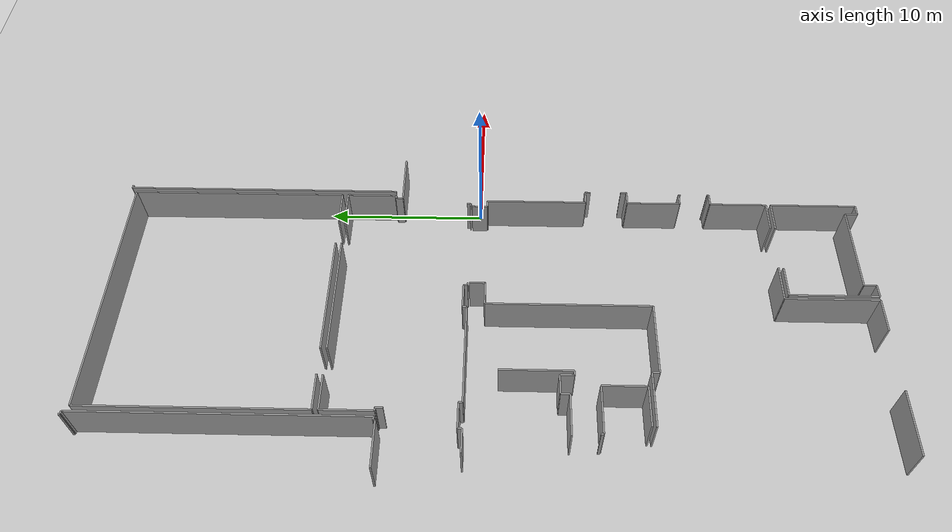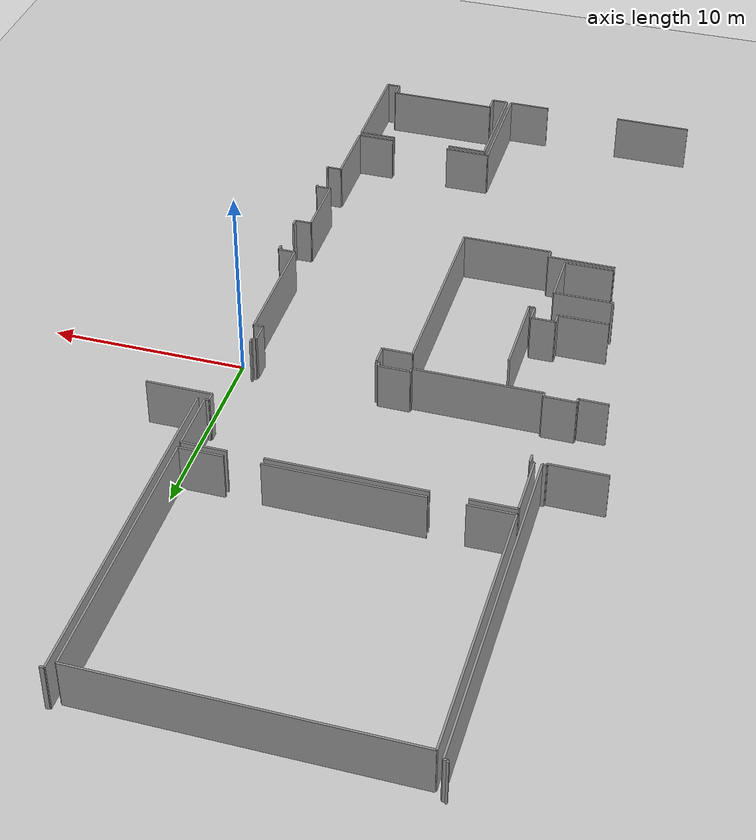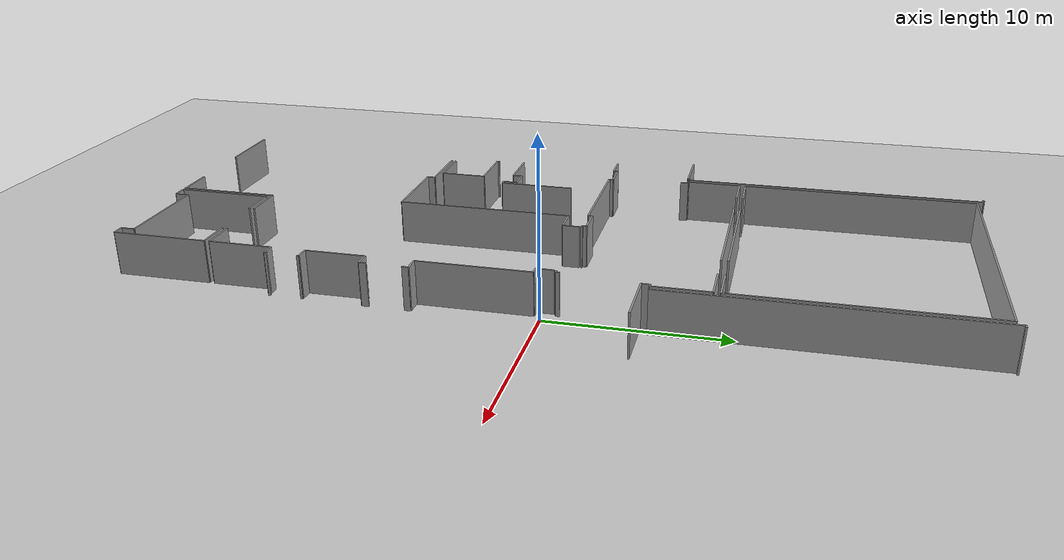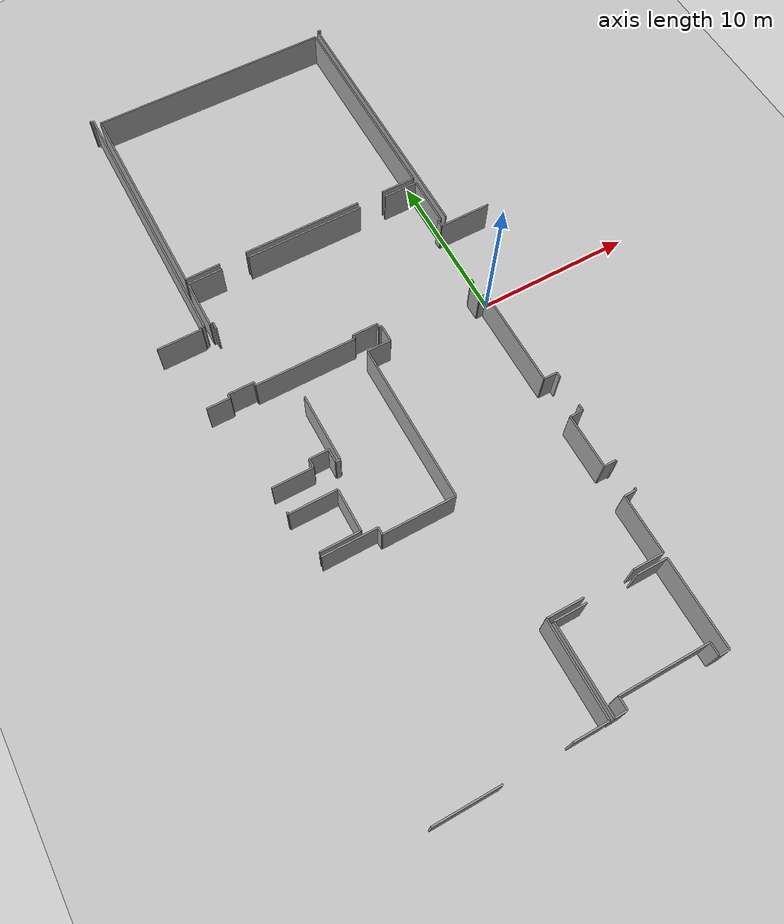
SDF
<sdf version="1.6">
 <world name="default">
  <model name="ground_plane">
   <static>1</static>
   <link name="link">
    <collision name="collision">
     <geometry><plane><normal>0 0 1</normal><size>100 100</size></plane></geometry>
     <surface><friction><ode><mu>100</mu><mu2>50</mu2></ode></friction></surface>
    </collision>
    <visual name="visual">
     <cast_shadows>0</cast_shadows>
     <geometry><plane><normal>0 0 1</normal><size>100 100</size></plane></geometry>
     <material>
      <script><uri>file://media/materials/scripts/gazebo.material</uri><name>Gazebo/Grey</name></script>
     </material>
    </visual>
   </link>
  </model>
  <model name="50057023">
   <static>1</static>
   <link name="Wall_75">
    <collision name="Wall_75_Collision">
     <geometry><box><size>0.115586570159 0.1 2.5</size></box></geometry>
     <pose>0.0577932850793 0 1.25 0 0 0</pose>
    </collision>
    <visual name="Wall_75_Visual">
     <pose>0.0577932850793 0 1.25 0 0 0</pose>
     <geometry><box><size>0.115586570159 0.1 2.5</size></box></geometry>
     <material>
      <script><uri>file://media/materials/scripts/gazebo.material</uri><name>Gazebo/Grey</name></script>
      <ambient>1 1 1 1</ambient>
     </material>
    </visual>
    <pose>39.4108380153 -0.0 0 0 0 -1.57079632679</pose>
   </link>
   <link name="Wall_76">
    <collision name="Wall_76_Collision">
     <geometry><box><size>0.195305816463 0.1 2.5</size></box></geometry>
     <pose>0.0976529082316 0 1.25 0 0 0</pose>
    </collision>
    <visual name="Wall_76_Visual">
     <pose>0.0976529082316 0 1.25 0 0 0</pose>
     <geometry><box><size>0.195305816463 0.1 2.5</size></box></geometry>
     <material>
      <script><uri>file://media/materials/scripts/gazebo.material</uri><name>Gazebo/Grey</name></script>
      <ambient>1 1 1 1</ambient>
     </material>
    </visual>
    <pose>39.4108380153 -0.115586570159 0 0 0 0.0</pose>
   </link>
   <link name="Wall_77">
    <collision name="Wall_77_Collision">
     <geometry><box><size>17.4663727996 0.1 2.5</size></box></geometry>
     <pose>8.73318639982 0 1.25 0 0 0</pose>
    </collision>
    <visual name="Wall_77_Visual">
     <pose>8.73318639982 0 1.25 0 0 0</pose>
     <geometry><box><size>17.4663727996 0.1 2.5</size></box></geometry>
     <material>
      <script><uri>file://media/materials/scripts/gazebo.material</uri><name>Gazebo/Grey</name></script>
      <ambient>1 1 1 1</ambient>
     </material>
    </visual>
    <pose>39.6061438318 -0.115586570159 0 0 0 -1.57079632679</pose>
   </link>
   <link name="Wall_78">
    <collision name="Wall_78_Collision">
     <geometry><box><size>0.217485257009 0.1 2.5</size></box></geometry>
     <pose>0.108742628505 0 1.25 0 0 0</pose>
    </collision>
    <visual name="Wall_78_Visual">
     <pose>0.108742628505 0 1.25 0 0 0</pose>
     <geometry><box><size>0.217485257009 0.1 2.5</size></box></geometry>
     <material>
      <script><uri>file://media/materials/scripts/gazebo.material</uri><name>Gazebo/Grey</name></script>
      <ambient>1 1 1 1</ambient>
     </material>
    </visual>
    <pose>39.6061438318 -17.5819593698 0 0 0 3.14159265359</pose>
   </link>
   <link name="Wall_79">
    <collision name="Wall_79_Collision">
     <geometry><box><size>0.0986034556836 0.1 2.5</size></box></geometry>
     <pose>0.0493017278418 0 1.25 0 0 0</pose>
    </collision>
    <visual name="Wall_79_Visual">
     <pose>0.0493017278418 0 1.25 0 0 0</pose>
     <geometry><box><size>0.0986034556836 0.1 2.5</size></box></geometry>
     <material>
      <script><uri>file://media/materials/scripts/gazebo.material</uri><name>Gazebo/Grey</name></script>
      <ambient>1 1 1 1</ambient>
     </material>
    </visual>
    <pose>39.3886585748 -17.5819593698 0 0 0 -1.57079632679</pose>
   </link>
   <link name="Wall_80">
    <collision name="Wall_80_Collision">
     <geometry><box><size>2.85468410773 0.1 2.5</size></box></geometry>
     <pose>1.42734205387 0 1.25 0 0 0</pose>
    </collision>
    <visual name="Wall_80_Visual">
     <pose>1.42734205387 0 1.25 0 0 0</pose>
     <geometry><box><size>2.85468410773 0.1 2.5</size></box></geometry>
     <material>
      <script><uri>file://media/materials/scripts/gazebo.material</uri><name>Gazebo/Grey</name></script>
      <ambient>1 1 1 1</ambient>
     </material>
    </visual>
    <pose>39.3886585748 -17.6805628255 0 0 0 3.14159265359</pose>
   </link>
   <link name="Wall_82">
    <collision name="Wall_82_Collision">
     <geometry><box><size>13.6055025291 0.1 2.5</size></box></geometry>
     <pose>6.80275126454 0 1.25 0 0 0</pose>
    </collision>
    <visual name="Wall_82_Visual">
     <pose>6.80275126454 0 1.25 0 0 0</pose>
     <geometry><box><size>13.6055025291 0.1 2.5</size></box></geometry>
     <material>
      <script><uri>file://media/materials/scripts/gazebo.material</uri><name>Gazebo/Grey</name></script>
      <ambient>1 1 1 1</ambient>
     </material>
    </visual>
    <pose>39.9583533476 -14.0796355981 0 0 0 1.57079632679</pose>
   </link>
   <link name="Wall_83">
    <collision name="Wall_83_Collision">
     <geometry><box><size>15.7609639312 0.1 2.5</size></box></geometry>
     <pose>7.88048196558 0 1.25 0 0 0</pose>
    </collision>
    <visual name="Wall_83_Visual">
     <pose>7.88048196558 0 1.25 0 0 0</pose>
     <geometry><box><size>15.7609639312 0.1 2.5</size></box></geometry>
     <material>
      <script><uri>file://media/materials/scripts/gazebo.material</uri><name>Gazebo/Grey</name></script>
      <ambient>1 1 1 1</ambient>
     </material>
    </visual>
    <pose>39.9583533476 -0.474133069039 0 0 0 0.0</pose>
   </link>
   <link name="Wall_84">
    <collision name="Wall_84_Collision">
     <geometry><box><size>13.5910542078 0.1 2.5</size></box></geometry>
     <pose>6.79552710391 0 1.25 0 0 0</pose>
    </collision>
    <visual name="Wall_84_Visual">
     <pose>6.79552710391 0 1.25 0 0 0</pose>
     <geometry><box><size>13.5910542078 0.1 2.5</size></box></geometry>
     <material>
      <script><uri>file://media/materials/scripts/gazebo.material</uri><name>Gazebo/Grey</name></script>
      <ambient>1 1 1 1</ambient>
     </material>
    </visual>
    <pose>55.7193172788 -0.474133069039 0 0 0 -1.57079632679</pose>
   </link>
   <link name="Wall_85">
    <collision name="Wall_85_Collision">
     <geometry><box><size>2.21148033191 0.1 2.5</size></box></geometry>
     <pose>1.10574016595 0 1.25 0 0 0</pose>
    </collision>
    <visual name="Wall_85_Visual">
     <pose>1.10574016595 0 1.25 0 0 0</pose>
     <geometry><box><size>2.21148033191 0.1 2.5</size></box></geometry>
     <material>
      <script><uri>file://media/materials/scripts/gazebo.material</uri><name>Gazebo/Grey</name></script>
      <ambient>1 1 1 1</ambient>
     </material>
    </visual>
    <pose>55.7193172788 -14.0651872769 0 0 0 3.14159265359</pose>
   </link>
   <link name="Wall_86">
    <collision name="Wall_86_Collision">
     <geometry><box><size>7.7680005171 0.1 2.5</size></box></geometry>
     <pose>3.88400025855 0 1.25 0 0 0</pose>
    </collision>
    <visual name="Wall_86_Visual">
     <pose>3.88400025855 0 1.25 0 0 0</pose>
     <geometry><box><size>7.7680005171 0.1 2.5</size></box></geometry>
     <material>
      <script><uri>file://media/materials/scripts/gazebo.material</uri><name>Gazebo/Grey</name></script>
      <ambient>1 1 1 1</ambient>
     </material>
    </visual>
    <pose>51.7442545744 -14.0651872769 0 0 0 3.14159265359</pose>
   </link>
   <link name="Wall_87">
    <collision name="Wall_87_Collision">
     <geometry><box><size>2.26348970639 0.1 2.5</size></box></geometry>
     <pose>1.13174485319 0 1.25 0 0 0</pose>
    </collision>
    <visual name="Wall_87_Visual">
     <pose>1.13174485319 0 1.25 0 0 0</pose>
     <geometry><box><size>2.26348970639 0.1 2.5</size></box></geometry>
     <material>
      <script><uri>file://media/materials/scripts/gazebo.material</uri><name>Gazebo/Grey</name></script>
      <ambient>1 1 1 1</ambient>
     </material>
    </visual>
    <pose>42.2217969403 -14.0651872769 0 0 0 -3.13520940416</pose>
   </link>
   <link name="Wall_88">
    <collision name="Wall_88_Collision">
     <geometry><box><size>17.4822152572 0.1 2.5</size></box></geometry>
     <pose>8.74110762859 0 1.25 0 0 0</pose>
    </collision>
    <visual name="Wall_88_Visual">
     <pose>8.74110762859 0 1.25 0 0 0</pose>
     <geometry><box><size>17.4822152572 0.1 2.5</size></box></geometry>
     <material>
      <script><uri>file://media/materials/scripts/gazebo.material</uri><name>Gazebo/Grey</name></script>
      <ambient>1 1 1 1</ambient>
     </material>
    </visual>
    <pose>56.0743150672 -17.5941263772 0 0 0 1.57079632679</pose>
   </link>
   <link name="Wall_89">
    <collision name="Wall_89_Collision">
     <geometry><box><size>0.20836000147 0.1 2.5</size></box></geometry>
     <pose>0.104180000735 0 1.25 0 0 0</pose>
    </collision>
    <visual name="Wall_89_Visual">
     <pose>0.104180000735 0 1.25 0 0 0</pose>
     <geometry><box><size>0.20836000147 0.1 2.5</size></box></geometry>
     <material>
      <script><uri>file://media/materials/scripts/gazebo.material</uri><name>Gazebo/Grey</name></script>
      <ambient>1 1 1 1</ambient>
     </material>
    </visual>
    <pose>56.0743150672 -0.111911120011 0 0 0 0.0</pose>
   </link>
   <link name="Wall_116">
    <collision name="Wall_116_Collision">
     <geometry><box><size>0.459177789128 0.1 2.5</size></box></geometry>
     <pose>0.229588894564 0 1.25 0 0 0</pose>
    </collision>
    <visual name="Wall_116_Visual">
     <pose>0.229588894564 0 1.25 0 0 0</pose>
     <geometry><box><size>0.459177789128 0.1 2.5</size></box></geometry>
     <material>
      <script><uri>file://media/materials/scripts/gazebo.material</uri><name>Gazebo/Grey</name></script>
      <ambient>1 1 1 1</ambient>
     </material>
    </visual>
    <pose>40.163037899 -18.0611620252 0 0 0 1.57079632679</pose>
   </link>
   <link name="Wall_117">
    <collision name="Wall_117_Collision">
     <geometry><box><size>0.19834756831 0.1 2.5</size></box></geometry>
     <pose>0.0991737841548 0 1.25 0 0 0</pose>
    </collision>
    <visual name="Wall_117_Visual">
     <pose>0.0991737841548 0 1.25 0 0 0</pose>
     <geometry><box><size>0.19834756831 0.1 2.5</size></box></geometry>
     <material>
      <script><uri>file://media/materials/scripts/gazebo.material</uri><name>Gazebo/Grey</name></script>
      <ambient>1 1 1 1</ambient>
     </material>
    </visual>
    <pose>40.163037899 -17.6019842361 0 0 0 3.14159265359</pose>
   </link>
   <link name="Wall_118">
    <collision name="Wall_118_Collision">
     <geometry><box><size>3.16304170115 0.1 2.5</size></box></geometry>
     <pose>1.58152085058 0 1.25 0 0 0</pose>
    </collision>
    <visual name="Wall_118_Visual">
     <pose>1.58152085058 0 1.25 0 0 0</pose>
     <geometry><box><size>3.16304170115 0.1 2.5</size></box></geometry>
     <material>
      <script><uri>file://media/materials/scripts/gazebo.material</uri><name>Gazebo/Grey</name></script>
      <ambient>1 1 1 1</ambient>
     </material>
    </visual>
    <pose>39.9646903307 -17.6019842361 0 0 0 1.57079632679</pose>
   </link>
   <link name="Wall_119">
    <collision name="Wall_119_Collision">
     <geometry><box><size>2.23720848294 0.1 2.5</size></box></geometry>
     <pose>1.11860424147 0 1.25 0 0 0</pose>
    </collision>
    <visual name="Wall_119_Visual">
     <pose>1.11860424147 0 1.25 0 0 0</pose>
     <geometry><box><size>2.23720848294 0.1 2.5</size></box></geometry>
     <material>
      <script><uri>file://media/materials/scripts/gazebo.material</uri><name>Gazebo/Grey</name></script>
      <ambient>1 1 1 1</ambient>
     </material>
    </visual>
    <pose>39.9646903307 -14.438942535 0 0 0 0.0</pose>
   </link>
   <link name="Wall_120">
    <collision name="Wall_120_Collision">
     <geometry><box><size>7.73428776747 0.1 2.5</size></box></geometry>
     <pose>3.86714388373 0 1.25 0 0 0</pose>
    </collision>
    <visual name="Wall_120_Visual">
     <pose>3.86714388373 0 1.25 0 0 0</pose>
     <geometry><box><size>7.73428776747 0.1 2.5</size></box></geometry>
     <material>
      <script><uri>file://media/materials/scripts/gazebo.material</uri><name>Gazebo/Grey</name></script>
      <ambient>1 1 1 1</ambient>
     </material>
    </visual>
    <pose>43.9817038626 -14.438942535 0 0 0 0.0</pose>
   </link>
   <link name="Wall_121">
    <collision name="Wall_121_Collision">
     <geometry><box><size>2.2261821325 0.1 2.5</size></box></geometry>
     <pose>1.11309106625 0 1.25 0 0 0</pose>
    </collision>
    <visual name="Wall_121_Visual">
     <pose>1.11309106625 0 1.25 0 0 0</pose>
     <geometry><box><size>2.2261821325 0.1 2.5</size></box></geometry>
     <material>
      <script><uri>file://media/materials/scripts/gazebo.material</uri><name>Gazebo/Grey</name></script>
      <ambient>1 1 1 1</ambient>
     </material>
    </visual>
    <pose>53.4871783823 -14.438942535 0 0 0 0.0</pose>
   </link>
   <link name="Wall_122">
    <collision name="Wall_122_Collision">
     <geometry><box><size>3.15556406119 0.1 2.5</size></box></geometry>
     <pose>1.5777820306 0 1.25 0 0 0</pose>
    </collision>
    <visual name="Wall_122_Visual">
     <pose>1.5777820306 0 1.25 0 0 0</pose>
     <geometry><box><size>3.15556406119 0.1 2.5</size></box></geometry>
     <material>
      <script><uri>file://media/materials/scripts/gazebo.material</uri><name>Gazebo/Grey</name></script>
      <ambient>1 1 1 1</ambient>
     </material>
    </visual>
    <pose>55.7133605148 -14.438942535 0 0 0 -1.57079632679</pose>
   </link>
   <link name="Wall_123">
    <collision name="Wall_123_Collision">
     <geometry><box><size>0.197333651027 0.1 2.5</size></box></geometry>
     <pose>0.0986668255137 0 1.25 0 0 0</pose>
    </collision>
    <visual name="Wall_123_Visual">
     <pose>0.0986668255137 0 1.25 0 0 0</pose>
     <geometry><box><size>0.197333651027 0.1 2.5</size></box></geometry>
     <material>
      <script><uri>file://media/materials/scripts/gazebo.material</uri><name>Gazebo/Grey</name></script>
      <ambient>1 1 1 1</ambient>
     </material>
    </visual>
    <pose>55.7133605148 -17.5945065962 0 0 0 3.14159265359</pose>
   </link>
   <link name="Wall_124">
    <collision name="Wall_124_Collision">
     <geometry><box><size>0.458417351166 0.1 2.5</size></box></geometry>
     <pose>0.229208675583 0 1.25 0 0 0</pose>
    </collision>
    <visual name="Wall_124_Visual">
     <pose>0.229208675583 0 1.25 0 0 0</pose>
     <geometry><box><size>0.458417351166 0.1 2.5</size></box></geometry>
     <material>
      <script><uri>file://media/materials/scripts/gazebo.material</uri><name>Gazebo/Grey</name></script>
      <ambient>1 1 1 1</ambient>
     </material>
    </visual>
    <pose>55.5160268637 -17.5945065962 0 0 0 -1.57079632679</pose>
   </link>
   <link name="Wall_125">
    <collision name="Wall_125_Collision">
     <geometry><box><size>3.32501498696 0.1 2.5</size></box></geometry>
     <pose>1.66250749348 0 1.25 0 0 0</pose>
    </collision>
    <visual name="Wall_125_Visual">
     <pose>1.66250749348 0 1.25 0 0 0</pose>
     <geometry><box><size>3.32501498696 0.1 2.5</size></box></geometry>
     <material>
      <script><uri>file://media/materials/scripts/gazebo.material</uri><name>Gazebo/Grey</name></script>
      <ambient>1 1 1 1</ambient>
     </material>
    </visual>
    <pose>55.5160268637 -18.0529239473 0 0 0 0.0</pose>
   </link>
   <link name="Wall_141">
    <collision name="Wall_141_Collision">
     <geometry><box><size>0.226737252208 0.1 2.5</size></box></geometry>
     <pose>0.113368626104 0 1.25 0 0 0</pose>
    </collision>
    <visual name="Wall_141_Visual">
     <pose>0.113368626104 0 1.25 0 0 0</pose>
     <geometry><box><size>0.226737252208 0.1 2.5</size></box></geometry>
     <material>
      <script><uri>file://media/materials/scripts/gazebo.material</uri><name>Gazebo/Grey</name></script>
      <ambient>1 1 1 1</ambient>
     </material>
    </visual>
    <pose>55.1133749631 -22.2895773106 0 0 0 -1.57079632679</pose>
   </link>
   <link name="Wall_142">
    <collision name="Wall_142_Collision">
     <geometry><box><size>0.201642799476 0.1 2.5</size></box></geometry>
     <pose>0.100821399738 0 1.25 0 0 0</pose>
    </collision>
    <visual name="Wall_142_Visual">
     <pose>0.100821399738 0 1.25 0 0 0</pose>
     <geometry><box><size>0.201642799476 0.1 2.5</size></box></geometry>
     <material>
      <script><uri>file://media/materials/scripts/gazebo.material</uri><name>Gazebo/Grey</name></script>
      <ambient>1 1 1 1</ambient>
     </material>
    </visual>
    <pose>55.1133749631 -22.5163145628 0 0 0 3.14159265359</pose>
   </link>
   <link name="Wall_143">
    <collision name="Wall_143_Collision">
     <geometry><box><size>0.188335135149 0.1 2.5</size></box></geometry>
     <pose>0.0941675675744 0 1.25 0 0 0</pose>
    </collision>
    <visual name="Wall_143_Visual">
     <pose>0.0941675675744 0 1.25 0 0 0</pose>
     <geometry><box><size>0.188335135149 0.1 2.5</size></box></geometry>
     <material>
      <script><uri>file://media/materials/scripts/gazebo.material</uri><name>Gazebo/Grey</name></script>
      <ambient>1 1 1 1</ambient>
     </material>
    </visual>
    <pose>48.8351991524 -22.5163145628 0 0 0 3.14159265359</pose>
   </link>
   <link name="Wall_144">
    <collision name="Wall_144_Collision">
     <geometry><box><size>0.248282994453 0.1 2.5</size></box></geometry>
     <pose>0.124141497226 0 1.25 0 0 0</pose>
    </collision>
    <visual name="Wall_144_Visual">
     <pose>0.124141497226 0 1.25 0 0 0</pose>
     <geometry><box><size>0.248282994453 0.1 2.5</size></box></geometry>
     <material>
      <script><uri>file://media/materials/scripts/gazebo.material</uri><name>Gazebo/Grey</name></script>
      <ambient>1 1 1 1</ambient>
     </material>
    </visual>
    <pose>48.6468640172 -22.5163145628 0 0 0 1.57079632679</pose>
   </link>
   <link name="Wall_145">
    <collision name="Wall_145_Collision">
     <geometry><box><size>1.6087065077 0.1 2.5</size></box></geometry>
     <pose>0.804353253851 0 1.25 0 0 0</pose>
    </collision>
    <visual name="Wall_145_Visual">
     <pose>0.804353253851 0 1.25 0 0 0</pose>
     <geometry><box><size>1.6087065077 0.1 2.5</size></box></geometry>
     <material>
      <script><uri>file://media/materials/scripts/gazebo.material</uri><name>Gazebo/Grey</name></script>
      <ambient>1 1 1 1</ambient>
     </material>
    </visual>
    <pose>48.6468640172 -22.2680315683 0 0 0 3.14159265359</pose>
   </link>
   <link name="Wall_146">
    <collision name="Wall_146_Collision">
     <geometry><box><size>0.239157738914 0.1 2.5</size></box></geometry>
     <pose>0.119578869457 0 1.25 0 0 0</pose>
    </collision>
    <visual name="Wall_146_Visual">
     <pose>0.119578869457 0 1.25 0 0 0</pose>
     <geometry><box><size>0.239157738914 0.1 2.5</size></box></geometry>
     <material>
      <script><uri>file://media/materials/scripts/gazebo.material</uri><name>Gazebo/Grey</name></script>
      <ambient>1 1 1 1</ambient>
     </material>
    </visual>
    <pose>47.0381575095 -22.2680315683 0 0 0 -1.57079632679</pose>
   </link>
   <link name="Wall_147">
    <collision name="Wall_147_Collision">
     <geometry><box><size>6.45662525237 0.1 2.5</size></box></geometry>
     <pose>3.22831262619 0 1.25 0 0 0</pose>
    </collision>
    <visual name="Wall_147_Visual">
     <pose>3.22831262619 0 1.25 0 0 0</pose>
     <geometry><box><size>6.45662525237 0.1 2.5</size></box></geometry>
     <material>
      <script><uri>file://media/materials/scripts/gazebo.material</uri><name>Gazebo/Grey</name></script>
      <ambient>1 1 1 1</ambient>
     </material>
    </visual>
    <pose>47.0381575095 -22.5071893072 0 0 0 3.14159265359</pose>
   </link>
   <link name="Wall_148">
    <collision name="Wall_148_Collision">
     <geometry><box><size>0.239157738914 0.1 2.5</size></box></geometry>
     <pose>0.119578869457 0 1.25 0 0 0</pose>
    </collision>
    <visual name="Wall_148_Visual">
     <pose>0.119578869457 0 1.25 0 0 0</pose>
     <geometry><box><size>0.239157738914 0.1 2.5</size></box></geometry>
     <material>
      <script><uri>file://media/materials/scripts/gazebo.material</uri><name>Gazebo/Grey</name></script>
      <ambient>1 1 1 1</ambient>
     </material>
    </visual>
    <pose>40.5815322571 -22.5071893072 0 0 0 1.57079632679</pose>
   </link>
   <link name="Wall_149">
    <collision name="Wall_149_Collision">
     <geometry><box><size>1.61593066834 0.1 2.5</size></box></geometry>
     <pose>0.807965334168 0 1.25 0 0 0</pose>
    </collision>
    <visual name="Wall_149_Visual">
     <pose>0.807965334168 0 1.25 0 0 0</pose>
     <geometry><box><size>1.61593066834 0.1 2.5</size></box></geometry>
     <material>
      <script><uri>file://media/materials/scripts/gazebo.material</uri><name>Gazebo/Grey</name></script>
      <ambient>1 1 1 1</ambient>
     </material>
    </visual>
    <pose>40.5815322571 -22.2680315683 0 0 0 3.14159265359</pose>
   </link>
   <link name="Wall_150">
    <collision name="Wall_150_Collision">
     <geometry><box><size>0.253732799844 0.1 2.5</size></box></geometry>
     <pose>0.126866399922 0 1.25 0 0 0</pose>
    </collision>
    <visual name="Wall_150_Visual">
     <pose>0.126866399922 0 1.25 0 0 0</pose>
     <geometry><box><size>0.253732799844 0.1 2.5</size></box></geometry>
     <material>
      <script><uri>file://media/materials/scripts/gazebo.material</uri><name>Gazebo/Grey</name></script>
      <ambient>1 1 1 1</ambient>
     </material>
    </visual>
    <pose>38.9656015888 -22.2680315683 0 0 0 -1.57079632679</pose>
   </link>
   <link name="Wall_151">
    <collision name="Wall_151_Collision">
     <geometry><box><size>1.470940497 0.1 2.5</size></box></geometry>
     <pose>0.735470248498 0 1.25 0 0 0</pose>
    </collision>
    <visual name="Wall_151_Visual">
     <pose>0.735470248498 0 1.25 0 0 0</pose>
     <geometry><box><size>1.470940497 0.1 2.5</size></box></geometry>
     <material>
      <script><uri>file://media/materials/scripts/gazebo.material</uri><name>Gazebo/Grey</name></script>
      <ambient>1 1 1 1</ambient>
     </material>
    </visual>
    <pose>38.9656015888 -22.5217643682 0 0 0 3.14159265359</pose>
   </link>
   <link name="Wall_251">
    <collision name="Wall_251_Collision">
     <geometry><box><size>3.44998029198 0.1 2.5</size></box></geometry>
     <pose>1.72499014599 0 1.25 0 0 0</pose>
    </collision>
    <visual name="Wall_251_Visual">
     <pose>1.72499014599 0 1.25 0 0 0</pose>
     <geometry><box><size>3.44998029198 0.1 2.5</size></box></geometry>
     <material>
      <script><uri>file://media/materials/scripts/gazebo.material</uri><name>Gazebo/Grey</name></script>
      <ambient>1 1 1 1</ambient>
     </material>
    </visual>
    <pose>39.2564691091 -33.3071827168 0 0 0 0.0</pose>
   </link>
   <link name="Wall_252">
    <collision name="Wall_252_Collision">
     <geometry><box><size>0.449925793929 0.1 2.5</size></box></geometry>
     <pose>0.224962896964 0 1.25 0 0 0</pose>
    </collision>
    <visual name="Wall_252_Visual">
     <pose>0.224962896964 0 1.25 0 0 0</pose>
     <geometry><box><size>0.449925793929 0.1 2.5</size></box></geometry>
     <material>
      <script><uri>file://media/materials/scripts/gazebo.material</uri><name>Gazebo/Grey</name></script>
      <ambient>1 1 1 1</ambient>
     </material>
    </visual>
    <pose>42.7064494011 -33.3071827168 0 0 0 -1.57079632679</pose>
   </link>
   <link name="Wall_253">
    <collision name="Wall_253_Collision">
     <geometry><box><size>4.58670830487 0.1 2.5</size></box></geometry>
     <pose>2.29335415243 0 1.25 0 0 0</pose>
    </collision>
    <visual name="Wall_253_Visual">
     <pose>2.29335415243 0 1.25 0 0 0</pose>
     <geometry><box><size>4.58670830487 0.1 2.5</size></box></geometry>
     <material>
      <script><uri>file://media/materials/scripts/gazebo.material</uri><name>Gazebo/Grey</name></script>
      <ambient>1 1 1 1</ambient>
     </material>
    </visual>
    <pose>42.7064494011 -33.7571085107 0 0 0 0.0</pose>
   </link>
   <link name="Wall_254">
    <collision name="Wall_254_Collision">
     <geometry><box><size>10.1598313856 0.1 2.5</size></box></geometry>
     <pose>5.07991569278 0 1.25 0 0 0</pose>
    </collision>
    <visual name="Wall_254_Visual">
     <pose>5.07991569278 0 1.25 0 0 0</pose>
     <geometry><box><size>10.1598313856 0.1 2.5</size></box></geometry>
     <material>
      <script><uri>file://media/materials/scripts/gazebo.material</uri><name>Gazebo/Grey</name></script>
      <ambient>1 1 1 1</ambient>
     </material>
    </visual>
    <pose>47.293157706 -33.7571085107 0 0 0 1.57079632679</pose>
   </link>
   <link name="Wall_255">
    <collision name="Wall_255_Collision">
     <geometry><box><size>1.52125614212 0.1 2.5</size></box></geometry>
     <pose>0.76062807106 0 1.25 0 0 0</pose>
    </collision>
    <visual name="Wall_255_Visual">
     <pose>0.76062807106 0 1.25 0 0 0</pose>
     <geometry><box><size>1.52125614212 0.1 2.5</size></box></geometry>
     <material>
      <script><uri>file://media/materials/scripts/gazebo.material</uri><name>Gazebo/Grey</name></script>
      <ambient>1 1 1 1</ambient>
     </material>
    </visual>
    <pose>47.293157706 -23.5972771251 0 0 0 0.0</pose>
   </link>
   <link name="Wall_256">
    <collision name="Wall_256_Collision">
     <geometry><box><size>0.976022123675 0.1 2.5</size></box></geometry>
     <pose>0.488011061838 0 1.25 0 0 0</pose>
    </collision>
    <visual name="Wall_256_Visual">
     <pose>0.488011061838 0 1.25 0 0 0</pose>
     <geometry><box><size>0.976022123675 0.1 2.5</size></box></geometry>
     <material>
      <script><uri>file://media/materials/scripts/gazebo.material</uri><name>Gazebo/Grey</name></script>
      <ambient>1 1 1 1</ambient>
     </material>
    </visual>
    <pose>48.8144138481 -23.5972771251 0 0 0 1.57079632679</pose>
   </link>
   <link name="Wall_257">
    <collision name="Wall_257_Collision">
     <geometry><box><size>0.981598668727 0.1 2.5</size></box></geometry>
     <pose>0.490799334363 0 1.25 0 0 0</pose>
    </collision>
    <visual name="Wall_257_Visual">
     <pose>0.490799334363 0 1.25 0 0 0</pose>
     <geometry><box><size>0.981598668727 0.1 2.5</size></box></geometry>
     <material>
      <script><uri>file://media/materials/scripts/gazebo.material</uri><name>Gazebo/Grey</name></script>
      <ambient>1 1 1 1</ambient>
     </material>
    </visual>
    <pose>54.9076764945 -22.6212550015 0 0 0 -1.57079632679</pose>
   </link>
   <link name="Wall_258">
    <collision name="Wall_258_Collision">
     <geometry><box><size>0.466655429083 0.1 2.5</size></box></geometry>
     <pose>0.233327714542 0 1.25 0 0 0</pose>
    </collision>
    <visual name="Wall_258_Visual">
     <pose>0.233327714542 0 1.25 0 0 0</pose>
     <geometry><box><size>0.466655429083 0.1 2.5</size></box></geometry>
     <material>
      <script><uri>file://media/materials/scripts/gazebo.material</uri><name>Gazebo/Grey</name></script>
      <ambient>1 1 1 1</ambient>
     </material>
    </visual>
    <pose>54.9076764945 -23.6028536702 0 0 0 0.0</pose>
   </link>
   <link name="Wall_259">
    <collision name="Wall_259_Collision">
     <geometry><box><size>6.41670225939 0.1 2.5</size></box></geometry>
     <pose>3.20835112969 0 1.25 0 0 0</pose>
    </collision>
    <visual name="Wall_259_Visual">
     <pose>3.20835112969 0 1.25 0 0 0</pose>
     <geometry><box><size>6.41670225939 0.1 2.5</size></box></geometry>
     <material>
      <script><uri>file://media/materials/scripts/gazebo.material</uri><name>Gazebo/Grey</name></script>
      <ambient>1 1 1 1</ambient>
     </material>
    </visual>
    <pose>55.3743319236 -23.6028536702 0 0 0 -1.57079632679</pose>
   </link>
   <link name="Wall_260">
    <collision name="Wall_260_Collision">
     <geometry><box><size>0.850042901375 0.1 2.5</size></box></geometry>
     <pose>0.425021450687 0 1.25 0 0 0</pose>
    </collision>
    <visual name="Wall_260_Visual">
     <pose>0.425021450687 0 1.25 0 0 0</pose>
     <geometry><box><size>0.850042901375 0.1 2.5</size></box></geometry>
     <material>
      <script><uri>file://media/materials/scripts/gazebo.material</uri><name>Gazebo/Grey</name></script>
      <ambient>1 1 1 1</ambient>
     </material>
    </visual>
    <pose>55.3743319236 -30.0195559296 0 0 0 0.0</pose>
   </link>
   <link name="Wall_261">
    <collision name="Wall_261_Collision">
     <geometry><box><size>0.35829301956 0.1 2.5</size></box></geometry>
     <pose>0.17914650978 0 1.25 0 0 0</pose>
    </collision>
    <visual name="Wall_261_Visual">
     <pose>0.17914650978 0 1.25 0 0 0</pose>
     <geometry><box><size>0.35829301956 0.1 2.5</size></box></geometry>
     <material>
      <script><uri>file://media/materials/scripts/gazebo.material</uri><name>Gazebo/Grey</name></script>
      <ambient>1 1 1 1</ambient>
     </material>
    </visual>
    <pose>56.2243748249 -30.0195559296 0 0 0 -1.57079632679</pose>
   </link>
   <link name="Wall_262">
    <collision name="Wall_262_Collision">
     <geometry><box><size>0.394540562395 0.1 2.5</size></box></geometry>
     <pose>0.197270281197 0 1.25 0 0 0</pose>
    </collision>
    <visual name="Wall_262_Visual">
     <pose>0.197270281197 0 1.25 0 0 0</pose>
     <geometry><box><size>0.394540562395 0.1 2.5</size></box></geometry>
     <material>
      <script><uri>file://media/materials/scripts/gazebo.material</uri><name>Gazebo/Grey</name></script>
      <ambient>1 1 1 1</ambient>
     </material>
    </visual>
    <pose>56.2243748249 -32.3486506662 0 0 0 -1.57079632679</pose>
   </link>
   <link name="Wall_263">
    <collision name="Wall_263_Collision">
     <geometry><box><size>0.85257769458 0.1 2.5</size></box></geometry>
     <pose>0.42628884729 0 1.25 0 0 0</pose>
    </collision>
    <visual name="Wall_263_Visual">
     <pose>0.42628884729 0 1.25 0 0 0</pose>
     <geometry><box><size>0.85257769458 0.1 2.5</size></box></geometry>
     <material>
      <script><uri>file://media/materials/scripts/gazebo.material</uri><name>Gazebo/Grey</name></script>
      <ambient>1 1 1 1</ambient>
     </material>
    </visual>
    <pose>56.2243748249 -32.7431912286 0 0 0 3.14159265359</pose>
   </link>
   <link name="Wall_264">
    <collision name="Wall_264_Collision">
     <geometry><box><size>3.41525362507 0.1 2.5</size></box></geometry>
     <pose>1.70762681254 0 1.25 0 0 0</pose>
    </collision>
    <visual name="Wall_264_Visual">
     <pose>1.70762681254 0 1.25 0 0 0</pose>
     <geometry><box><size>3.41525362507 0.1 2.5</size></box></geometry>
     <material>
      <script><uri>file://media/materials/scripts/gazebo.material</uri><name>Gazebo/Grey</name></script>
      <ambient>1 1 1 1</ambient>
     </material>
    </visual>
    <pose>55.3717971304 -32.7431912286 0 0 0 -1.57079632679</pose>
   </link>
   <link name="Wall_265">
    <collision name="Wall_265_Collision">
     <geometry><box><size>0.756128813121 0.1 2.5</size></box></geometry>
     <pose>0.378064406561 0 1.25 0 0 0</pose>
    </collision>
    <visual name="Wall_265_Visual">
     <pose>0.378064406561 0 1.25 0 0 0</pose>
     <geometry><box><size>0.756128813121 0.1 2.5</size></box></geometry>
     <material>
      <script><uri>file://media/materials/scripts/gazebo.material</uri><name>Gazebo/Grey</name></script>
      <ambient>1 1 1 1</ambient>
     </material>
    </visual>
    <pose>55.3717971304 -36.1584448537 0 0 0 0.0</pose>
   </link>
   <link name="Wall_266">
    <collision name="Wall_266_Collision">
     <geometry><box><size>0.119768978947 0.1 2.5</size></box></geometry>
     <pose>0.0598844894736 0 1.25 0 0 0</pose>
    </collision>
    <visual name="Wall_266_Visual">
     <pose>0.0598844894736 0 1.25 0 0 0</pose>
     <geometry><box><size>0.119768978947 0.1 2.5</size></box></geometry>
     <material>
      <script><uri>file://media/materials/scripts/gazebo.material</uri><name>Gazebo/Grey</name></script>
      <ambient>1 1 1 1</ambient>
     </material>
    </visual>
    <pose>56.1279259435 -36.1584448537 0 0 0 -1.57079632679</pose>
   </link>
   <link name="Wall_267">
    <collision name="Wall_267_Collision">
     <geometry><box><size>0.134090560557 0.1 2.5</size></box></geometry>
     <pose>0.0670452802784 0 1.25 0 0 0</pose>
    </collision>
    <visual name="Wall_267_Visual">
     <pose>0.0670452802784 0 1.25 0 0 0</pose>
     <geometry><box><size>0.134090560557 0.1 2.5</size></box></geometry>
     <material>
      <script><uri>file://media/materials/scripts/gazebo.material</uri><name>Gazebo/Grey</name></script>
      <ambient>1 1 1 1</ambient>
     </material>
    </visual>
    <pose>56.1279259435 -38.0025069105 0 0 0 -1.57079632679</pose>
   </link>
   <link name="Wall_268">
    <collision name="Wall_268_Collision">
     <geometry><box><size>0.752326623313 0.1 2.5</size></box></geometry>
     <pose>0.376163311657 0 1.25 0 0 0</pose>
    </collision>
    <visual name="Wall_268_Visual">
     <pose>0.376163311657 0 1.25 0 0 0</pose>
     <geometry><box><size>0.752326623313 0.1 2.5</size></box></geometry>
     <material>
      <script><uri>file://media/materials/scripts/gazebo.material</uri><name>Gazebo/Grey</name></script>
      <ambient>1 1 1 1</ambient>
     </material>
    </visual>
    <pose>56.1279259435 -38.136597471 0 0 0 3.14159265359</pose>
   </link>
   <link name="Wall_269">
    <collision name="Wall_269_Collision">
     <geometry><box><size>3.63147148548 0.1 2.5</size></box></geometry>
     <pose>1.81573574274 0 1.25 0 0 0</pose>
    </collision>
    <visual name="Wall_269_Visual">
     <pose>1.81573574274 0 1.25 0 0 0</pose>
     <geometry><box><size>3.63147148548 0.1 2.5</size></box></geometry>
     <material>
      <script><uri>file://media/materials/scripts/gazebo.material</uri><name>Gazebo/Grey</name></script>
      <ambient>1 1 1 1</ambient>
     </material>
    </visual>
    <pose>55.3755993202 -38.136597471 0 0 0 -1.57079632679</pose>
   </link>
   <link name="Wall_270">
    <collision name="Wall_270_Collision">
     <geometry><box><size>1.92441500141 0.1 2.5</size></box></geometry>
     <pose>0.962207500707 0 1.25 0 0 0</pose>
    </collision>
    <visual name="Wall_270_Visual">
     <pose>0.962207500707 0 1.25 0 0 0</pose>
     <geometry><box><size>1.92441500141 0.1 2.5</size></box></geometry>
     <material>
      <script><uri>file://media/materials/scripts/gazebo.material</uri><name>Gazebo/Grey</name></script>
      <ambient>1 1 1 1</ambient>
     </material>
    </visual>
    <pose>55.3755993202 -41.7680689565 0 0 0 3.14159265359</pose>
   </link>
   <link name="Wall_271">
    <collision name="Wall_271_Collision">
     <geometry><box><size>2.31768816721 0.1 2.5</size></box></geometry>
     <pose>1.1588440836 0 1.25 0 0 0</pose>
    </collision>
    <visual name="Wall_271_Visual">
     <pose>1.1588440836 0 1.25 0 0 0</pose>
     <geometry><box><size>2.31768816721 0.1 2.5</size></box></geometry>
     <material>
      <script><uri>file://media/materials/scripts/gazebo.material</uri><name>Gazebo/Grey</name></script>
      <ambient>1 1 1 1</ambient>
     </material>
    </visual>
    <pose>50.3198275327 -41.7680689565 0 0 0 3.14159265359</pose>
   </link>
   <link name="Wall_272">
    <collision name="Wall_272_Collision">
     <geometry><box><size>5.78984789973 0.1 2.5</size></box></geometry>
     <pose>2.89492394987 0 1.25 0 0 0</pose>
    </collision>
    <visual name="Wall_272_Visual">
     <pose>2.89492394987 0 1.25 0 0 0</pose>
     <geometry><box><size>5.78984789973 0.1 2.5</size></box></geometry>
     <material>
      <script><uri>file://media/materials/scripts/gazebo.material</uri><name>Gazebo/Grey</name></script>
      <ambient>1 1 1 1</ambient>
     </material>
    </visual>
    <pose>48.0021393655 -41.7680689565 0 0 0 -1.57079632679</pose>
   </link>
   <link name="Wall_273">
    <collision name="Wall_273_Collision">
     <geometry><box><size>2.16686797149 0.1 2.5</size></box></geometry>
     <pose>1.08343398575 0 1.25 0 0 0</pose>
    </collision>
    <visual name="Wall_273_Visual">
     <pose>1.08343398575 0 1.25 0 0 0</pose>
     <geometry><box><size>2.16686797149 0.1 2.5</size></box></geometry>
     <material>
      <script><uri>file://media/materials/scripts/gazebo.material</uri><name>Gazebo/Grey</name></script>
      <ambient>1 1 1 1</ambient>
     </material>
    </visual>
    <pose>48.0021393655 -47.5579168562 0 0 0 3.14159265359</pose>
   </link>
   <link name="Wall_274">
    <collision name="Wall_274_Collision">
     <geometry><box><size>4.01688679233 0.1 2.5</size></box></geometry>
     <pose>2.00844339617 0 1.25 0 0 0</pose>
    </collision>
    <visual name="Wall_274_Visual">
     <pose>2.00844339617 0 1.25 0 0 0</pose>
     <geometry><box><size>4.01688679233 0.1 2.5</size></box></geometry>
     <material>
      <script><uri>file://media/materials/scripts/gazebo.material</uri><name>Gazebo/Grey</name></script>
      <ambient>1 1 1 1</ambient>
     </material>
    </visual>
    <pose>41.8062175943 -47.5579168562 0 0 0 3.14159265359</pose>
   </link>
   <link name="Wall_280">
    <collision name="Wall_280_Collision">
     <geometry><box><size>0.156143261442 0.1 2.5</size></box></geometry>
     <pose>0.0780716307212 0 1.25 0 0 0</pose>
    </collision>
    <visual name="Wall_280_Visual">
     <pose>0.0780716307212 0 1.25 0 0 0</pose>
     <geometry><box><size>0.156143261442 0.1 2.5</size></box></geometry>
     <material>
      <script><uri>file://media/materials/scripts/gazebo.material</uri><name>Gazebo/Grey</name></script>
      <ambient>1 1 1 1</ambient>
     </material>
    </visual>
    <pose>38.7787873296 -30.188373157 0 0 0 -1.57079632679</pose>
   </link>
   <link name="Wall_281">
    <collision name="Wall_281_Collision">
     <geometry><box><size>3.02058632302 0.1 2.5</size></box></geometry>
     <pose>1.51029316151 0 1.25 0 0 0</pose>
    </collision>
    <visual name="Wall_281_Visual">
     <pose>1.51029316151 0 1.25 0 0 0</pose>
     <geometry><box><size>3.02058632302 0.1 2.5</size></box></geometry>
     <material>
      <script><uri>file://media/materials/scripts/gazebo.material</uri><name>Gazebo/Grey</name></script>
      <ambient>1 1 1 1</ambient>
     </material>
    </visual>
    <pose>38.7787873296 -30.3445164185 0 0 0 0.0</pose>
   </link>
   <link name="Wall_282">
    <collision name="Wall_282_Collision">
     <geometry><box><size>2.69169690464 0.1 2.5</size></box></geometry>
     <pose>1.34584845232 0 1.25 0 0 0</pose>
    </collision>
    <visual name="Wall_282_Visual">
     <pose>1.34584845232 0 1.25 0 0 0</pose>
     <geometry><box><size>2.69169690464 0.1 2.5</size></box></geometry>
     <material>
      <script><uri>file://media/materials/scripts/gazebo.material</uri><name>Gazebo/Grey</name></script>
      <ambient>1 1 1 1</ambient>
     </material>
    </visual>
    <pose>41.7993736526 -30.3445164185 0 0 0 -1.57079632679</pose>
   </link>
   <link name="Wall_283">
    <collision name="Wall_283_Collision">
     <geometry><box><size>2.51869726838 0.1 2.5</size></box></geometry>
     <pose>1.25934863419 0 1.25 0 0 0</pose>
    </collision>
    <visual name="Wall_283_Visual">
     <pose>1.25934863419 0 1.25 0 0 0</pose>
     <geometry><box><size>2.51869726838 0.1 2.5</size></box></geometry>
     <material>
      <script><uri>file://media/materials/scripts/gazebo.material</uri><name>Gazebo/Grey</name></script>
      <ambient>1 1 1 1</ambient>
     </material>
    </visual>
    <pose>41.7993736526 -33.0362133231 0 0 0 3.14159265359</pose>
   </link>
   <link name="Wall_288">
    <collision name="Wall_288_Collision">
     <geometry><box><size>4.38430506743 0.1 2.5</size></box></geometry>
     <pose>2.19215253372 0 1.25 0 0 0</pose>
    </collision>
    <visual name="Wall_288_Visual">
     <pose>2.19215253372 0 1.25 0 0 0</pose>
     <geometry><box><size>4.38430506743 0.1 2.5</size></box></geometry>
     <material>
      <script><uri>file://media/materials/scripts/gazebo.material</uri><name>Gazebo/Grey</name></script>
      <ambient>1 1 1 1</ambient>
     </material>
    </visual>
    <pose>42.735219304 -24.4707668637 0 0 0 -1.57079632679</pose>
   </link>
   <link name="Wall_289">
    <collision name="Wall_289_Collision">
     <geometry><box><size>0.284023578646 0.1 2.5</size></box></geometry>
     <pose>0.142011789323 0 1.25 0 0 0</pose>
    </collision>
    <visual name="Wall_289_Visual">
     <pose>0.142011789323 0 1.25 0 0 0</pose>
     <geometry><box><size>0.284023578646 0.1 2.5</size></box></geometry>
     <material>
      <script><uri>file://media/materials/scripts/gazebo.material</uri><name>Gazebo/Grey</name></script>
      <ambient>1 1 1 1</ambient>
     </material>
    </visual>
    <pose>42.735219304 -28.8550719311 0 0 0 3.14159265359</pose>
   </link>
   <link name="Wall_290">
    <collision name="Wall_290_Collision">
     <geometry><box><size>0.840537426855 0.1 2.5</size></box></geometry>
     <pose>0.420268713428 0 1.25 0 0 0</pose>
    </collision>
    <visual name="Wall_290_Visual">
     <pose>0.420268713428 0 1.25 0 0 0</pose>
     <geometry><box><size>0.840537426855 0.1 2.5</size></box></geometry>
     <material>
      <script><uri>file://media/materials/scripts/gazebo.material</uri><name>Gazebo/Grey</name></script>
      <ambient>1 1 1 1</ambient>
     </material>
    </visual>
    <pose>42.4511957253 -28.8550719311 0 0 0 1.57079632679</pose>
   </link>
   <link name="Wall_291">
    <collision name="Wall_291_Collision">
     <geometry><box><size>1.22468533711 0.1 2.5</size></box></geometry>
     <pose>0.612342668554 0 1.25 0 0 0</pose>
    </collision>
    <visual name="Wall_291_Visual">
     <pose>0.612342668554 0 1.25 0 0 0</pose>
     <geometry><box><size>1.22468533711 0.1 2.5</size></box></geometry>
     <material>
      <script><uri>file://media/materials/scripts/gazebo.material</uri><name>Gazebo/Grey</name></script>
      <ambient>1 1 1 1</ambient>
     </material>
    </visual>
    <pose>42.4511957253 -28.0145345042 0 0 0 3.14159265359</pose>
   </link>
   <link name="Wall_292">
    <collision name="Wall_292_Collision">
     <geometry><box><size>0.550683823837 0.1 2.5</size></box></geometry>
     <pose>0.275341911918 0 1.25 0 0 0</pose>
    </collision>
    <visual name="Wall_292_Visual">
     <pose>0.275341911918 0 1.25 0 0 0</pose>
     <geometry><box><size>0.550683823837 0.1 2.5</size></box></geometry>
     <material>
      <script><uri>file://media/materials/scripts/gazebo.material</uri><name>Gazebo/Grey</name></script>
      <ambient>1 1 1 1</ambient>
     </material>
    </visual>
    <pose>41.2265103882 -28.0145345042 0 0 0 -1.57079632679</pose>
   </link>
   <link name="Wall_293">
    <collision name="Wall_293_Collision">
     <geometry><box><size>2.58700994526 0.1 2.5</size></box></geometry>
     <pose>1.29350497263 0 1.25 0 0 0</pose>
    </collision>
    <visual name="Wall_293_Visual">
     <pose>1.29350497263 0 1.25 0 0 0</pose>
     <geometry><box><size>2.58700994526 0.1 2.5</size></box></geometry>
     <material>
      <script><uri>file://media/materials/scripts/gazebo.material</uri><name>Gazebo/Grey</name></script>
      <ambient>1 1 1 1</ambient>
     </material>
    </visual>
    <pose>41.2265103882 -28.5652183281 0 0 0 3.14159265359</pose>
   </link>
   <link name="Wall_296">
    <collision name="Wall_296_Collision">
     <geometry><box><size>5.50075473468 0.1 2.5</size></box></geometry>
     <pose>2.75037736734 0 1.25 0 0 0</pose>
    </collision>
    <visual name="Wall_296_Visual">
     <pose>2.75037736734 0 1.25 0 0 0</pose>
     <geometry><box><size>5.50075473468 0.1 2.5</size></box></geometry>
     <material>
      <script><uri>file://media/materials/scripts/gazebo.material</uri><name>Gazebo/Grey</name></script>
      <ambient>1 1 1 1</ambient>
     </material>
    </visual>
    <pose>48.2647439415 -47.5761673673 0 0 0 1.57079632679</pose>
   </link>
   <link name="Wall_297">
    <collision name="Wall_297_Collision">
     <geometry><box><size>2.02213127947 0.1 2.5</size></box></geometry>
     <pose>1.01106563974 0 1.25 0 0 0</pose>
    </collision>
    <visual name="Wall_297_Visual">
     <pose>1.01106563974 0 1.25 0 0 0</pose>
     <geometry><box><size>2.02213127947 0.1 2.5</size></box></geometry>
     <material>
      <script><uri>file://media/materials/scripts/gazebo.material</uri><name>Gazebo/Grey</name></script>
      <ambient>1 1 1 1</ambient>
     </material>
    </visual>
    <pose>48.2647439415 -42.0754126326 0 0 0 0.0</pose>
   </link>
   <link name="Wall_298">
    <collision name="Wall_298_Collision">
     <geometry><box><size>1.92872414986 0.1 2.5</size></box></geometry>
     <pose>0.964362074931 0 1.25 0 0 0</pose>
    </collision>
    <visual name="Wall_298_Visual">
     <pose>0.964362074931 0 1.25 0 0 0</pose>
     <geometry><box><size>1.92872414986 0.1 2.5</size></box></geometry>
     <material>
      <script><uri>file://media/materials/scripts/gazebo.material</uri><name>Gazebo/Grey</name></script>
      <ambient>1 1 1 1</ambient>
     </material>
    </visual>
    <pose>53.4430729805 -42.0754126326 0 0 0 0.0</pose>
   </link>
   <link name="Wall_299">
    <collision name="Wall_299_Collision">
     <geometry><box><size>5.4825042236 0.1 2.5</size></box></geometry>
     <pose>2.7412521118 0 1.25 0 0 0</pose>
    </collision>
    <visual name="Wall_299_Visual">
     <pose>2.7412521118 0 1.25 0 0 0</pose>
     <geometry><box><size>5.4825042236 0.1 2.5</size></box></geometry>
     <material>
      <script><uri>file://media/materials/scripts/gazebo.material</uri><name>Gazebo/Grey</name></script>
      <ambient>1 1 1 1</ambient>
     </material>
    </visual>
    <pose>55.3717971304 -42.0754126326 0 0 0 -1.57079632679</pose>
   </link>
   <link name="Wall_300">
    <collision name="Wall_300_Collision">
     <geometry><box><size>0.667030831957 0.1 2.5</size></box></geometry>
     <pose>0.333515415979 0 1.25 0 0 0</pose>
    </collision>
    <visual name="Wall_300_Visual">
     <pose>0.333515415979 0 1.25 0 0 0</pose>
     <geometry><box><size>0.667030831957 0.1 2.5</size></box></geometry>
     <material>
      <script><uri>file://media/materials/scripts/gazebo.material</uri><name>Gazebo/Grey</name></script>
      <ambient>1 1 1 1</ambient>
     </material>
    </visual>
    <pose>55.3717971304 -47.5579168562 0 0 0 3.14159265359</pose>
   </link>
   <link name="Wall_301">
    <collision name="Wall_301_Collision">
     <geometry><box><size>0.782617402116 0.1 2.5</size></box></geometry>
     <pose>0.391308701058 0 1.25 0 0 0</pose>
    </collision>
    <visual name="Wall_301_Visual">
     <pose>0.391308701058 0 1.25 0 0 0</pose>
     <geometry><box><size>0.782617402116 0.1 2.5</size></box></geometry>
     <material>
      <script><uri>file://media/materials/scripts/gazebo.material</uri><name>Gazebo/Grey</name></script>
      <ambient>1 1 1 1</ambient>
     </material>
    </visual>
    <pose>54.7047662984 -47.5579168562 0 0 0 1.57079632679</pose>
   </link>
   <link name="Wall_302">
    <collision name="Wall_302_Collision">
     <geometry><box><size>5.63421159693 0.1 2.5</size></box></geometry>
     <pose>2.81710579847 0 1.25 0 0 0</pose>
    </collision>
    <visual name="Wall_302_Visual">
     <pose>2.81710579847 0 1.25 0 0 0</pose>
     <geometry><box><size>5.63421159693 0.1 2.5</size></box></geometry>
     <material>
      <script><uri>file://media/materials/scripts/gazebo.material</uri><name>Gazebo/Grey</name></script>
      <ambient>1 1 1 1</ambient>
     </material>
    </visual>
    <pose>54.7047662984 -46.7752994541 0 0 0 3.14159265359</pose>
   </link>
   <link name="Wall_303">
    <collision name="Wall_303_Collision">
     <geometry><box><size>0.784011538379 0.1 2.5</size></box></geometry>
     <pose>0.392005769189 0 1.25 0 0 0</pose>
    </collision>
    <visual name="Wall_303_Visual">
     <pose>0.392005769189 0 1.25 0 0 0</pose>
     <geometry><box><size>0.784011538379 0.1 2.5</size></box></geometry>
     <material>
      <script><uri>file://media/materials/scripts/gazebo.material</uri><name>Gazebo/Grey</name></script>
      <ambient>1 1 1 1</ambient>
     </material>
    </visual>
    <pose>49.0705547015 -46.7752994541 0 0 0 -1.57079632679</pose>
   </link>
   <link name="Wall_304">
    <collision name="Wall_304_Collision">
     <geometry><box><size>0.805987045934 0.1 2.5</size></box></geometry>
     <pose>0.402993522967 0 1.25 0 0 0</pose>
    </collision>
    <visual name="Wall_304_Visual">
     <pose>0.402993522967 0 1.25 0 0 0</pose>
     <geometry><box><size>0.805987045934 0.1 2.5</size></box></geometry>
     <material>
      <script><uri>file://media/materials/scripts/gazebo.material</uri><name>Gazebo/Grey</name></script>
      <ambient>1 1 1 1</ambient>
     </material>
    </visual>
    <pose>49.0705547015 -47.5593109925 0 0 0 -3.12067717616</pose>
   </link>
   <pose>-55.9 23.1541768322 0 0 0 0</pose>
  </model>
 </world>
</sdf>
